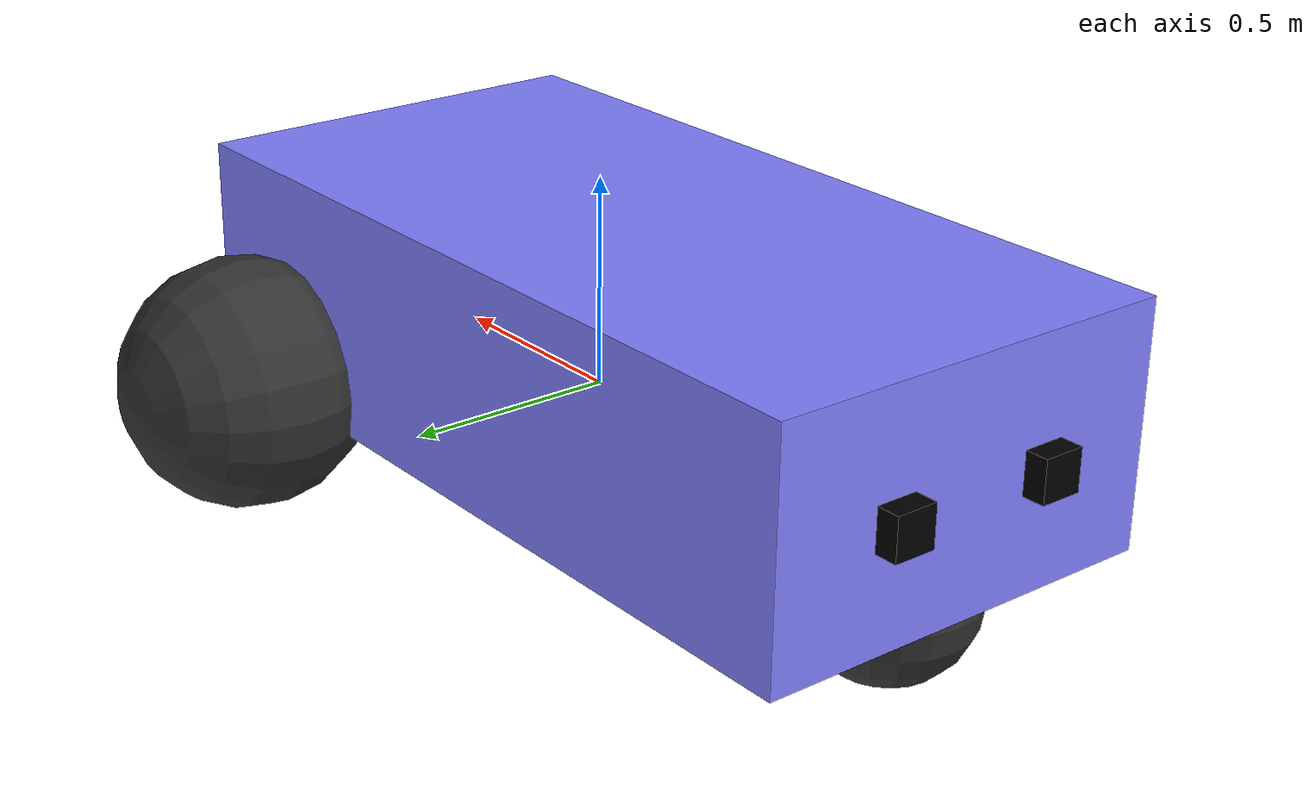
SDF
<?xml version="1.0" ?>
<sdf version="1.8">
    <model name='vehicle'>

      <link name='chassis'>
        <pose>-0.151427 -0 0.175 0 -0 0</pose>
        <inertial>
          <mass>1.14395</mass>
          <inertia>
            <ixx>0.126164</ixx>
            <ixy>0</ixy>
            <ixz>0</ixz>
            <iyy>0.416519</iyy>
            <iyz>0</iyz>
            <izz>0.481014</izz>
          </inertia>
        </inertial>
        <visual name='visual_chassis'>
          <geometry>
            <box>
              <size>2.01142 1 0.568726</size>
            </box>
          </geometry>
          <material>
            <ambient>0.5 0.5 1.0 1</ambient>
            <diffuse>0.5 0.5 1.0 1</diffuse>
            <specular>0.0 0.0 1.0 1</specular>
          </material>
        </visual>
        <collision name='collision_chassis'>
          <geometry>
            <box>
              <size>2.01142 1 0.568726</size>
            </box>
          </geometry>
        </collision>
      </link>
      <link name = 'camera_visual'>
        <pose>0.85 0 0.17 0 0 0</pose>
        <sensor type="camera" name="camera_left">
          <pose>-2.01142 0.2 0 0 0 3.14</pose>
          <camera>
            <horizontal_fov>1.047</horizontal_fov>
            <image>
              <width>320</width>
              <height>240</height>
            </image>
            <clip>
              <near>0.1</near>
              <far>100</far>
            </clip>
          </camera>
          <always_on>1</always_on>
          <update_rate>30</update_rate>
          <visualize>true</visualize>
        </sensor>
        <visual name='visual_chassis_left'>
          <pose>-2.01142 0.2 0 0 0 0</pose>
          <geometry>
            <box>
              <size>0.1 0.1 0.1</size>
            </box>
          </geometry>
          <material>
            <ambient>0 0 0 1</ambient>
            <diffuse>0 0 0 1</diffuse>
            <specular>0 0 0 1</specular>
          </material>
        </visual>
        <sensor type="camera" name="camera_right">
          <pose>-2.01142 -0.2 0 0 0 3.14</pose>
          <camera>
            <horizontal_fov>1.047</horizontal_fov>
            <image>
              <width>320</width>
              <height>240</height>
            </image>
            <clip>
              <near>0.1</near>
              <far>100</far>
            </clip>
          </camera>
          <always_on>1</always_on>
          <update_rate>30</update_rate>
          <visualize>true</visualize>
        </sensor>
        <visual name='visual_chassis_right'>
          <pose>-2.01142 -0.2 0 0 0 0</pose>
          <geometry>
            <box>
              <size>0.1 0.1 0.1</size>
            </box>
          </geometry>
          <material>
            <ambient>0 0 0 0</ambient>
            <diffuse>0 0 0 1</diffuse>
            <specular>0.0 0.0 1.0 1</specular>
          </material>
        </visual>
      </link>
      <link name='left_wheel'>
        <pose>0.554283 0.625029 -0.025 -1.5707 0 0</pose>
        <inertial>
          <mass>2</mass>
          <inertia>
            <ixx>0.145833</ixx>
            <ixy>0</ixy>
            <ixz>0</ixz>
            <iyy>0.145833</iyy>
            <iyz>0</iyz>
            <izz>0.125</izz>
          </inertia>
        </inertial>
        <visual name='visual_left_wheel'>
          <geometry>
            <sphere>
              <radius>0.3</radius>
            </sphere>
          </geometry>
          <material>
            <ambient>0.2 0.2 0.2 1</ambient>
            <diffuse>0.2 0.2 0.2 1</diffuse>
            <specular>0.2 0.2 0.2 1</specular>
          </material>
        </visual>
        <collision name='collision_left_wheel'>
          <geometry>
            <sphere>
              <radius>0.3</radius>
            </sphere>
          </geometry>
        </collision>
      </link>

      <link name='right_wheel'>
        <pose>0.554282 -0.625029 -0.025 -1.5707 0 0</pose>
        <inertial>
          <mass>2</mass>
          <inertia>
            <ixx>0.145833</ixx>
            <ixy>0</ixy>
            <ixz>0</ixz>
            <iyy>0.145833</iyy>
            <iyz>0</iyz>
            <izz>0.125</izz>
          </inertia>
        </inertial>
        <visual name='visual_right_wheel'>
          <geometry>
            <sphere>
              <radius>0.3</radius>
            </sphere>
          </geometry>
          <material>
            <ambient>0.2 0.2 0.2 1</ambient>
            <diffuse>0.2 0.2 0.2 1</diffuse>
            <specular>0.2 0.2 0.2 1</specular>
          </material>
        </visual>
        <collision name='collision_right_wheel'>
          <geometry>
            <sphere>
              <radius>0.3</radius>
            </sphere>
          </geometry>
        </collision>
      </link>

      <link name='caster'>
        <pose>-0.957138 -0 -0.125 0 -0 0</pose>
        <inertial>
          <mass>1</mass>
          <inertia>
            <ixx>0.1</ixx>
            <ixy>0</ixy>
            <ixz>0</ixz>
            <iyy>0.1</iyy>
            <iyz>0</iyz>
            <izz>0.1</izz>
          </inertia>
        </inertial>
        <visual name='visual_caster'>
          <geometry>
            <sphere>
              <radius>0.2</radius>
            </sphere>
          </geometry>
          <material>
            <ambient>0.2 0.2 0.2 1</ambient>
            <diffuse>0.2 0.2 0.2 1</diffuse>
            <specular>0.2 0.2 0.2 1</specular>
          </material>
        </visual>
        <collision name='collision_caster'>
          <geometry>
            <sphere>
              <radius>0.2</radius>
            </sphere>
          </geometry>
        </collision>
      </link>

      <joint name='left_wheel_joint' type='revolute'>
        <parent>chassis</parent>
        <child>left_wheel</child>
        <axis>
          <xyz>0 0 1</xyz>
          <limit>
            <lower>-1.79769e+308</lower>
            <upper>1.79769e+308</upper>
          </limit>
        </axis>
      </joint>

      <joint name='right_wheel_joint' type='revolute'>
        <parent>chassis</parent>
        <child>right_wheel</child>
        <axis>
          <xyz>0 0 1</xyz>
          <limit>
            <lower>-1.79769e+308</lower>
            <upper>1.79769e+308</upper>
          </limit>
        </axis>
      </joint>
      <joint name='camera_visual_joint' type='fixed'>
        <parent>chassis</parent>
        <child>camera_visual</child>
      </joint>

      <joint name='caster_wheel' type='fixed'>
        <parent>chassis</parent>
        <child>caster</child>
      </joint>

      <plugin
        filename="ignition-gazebo-diff-drive-system"
        name="ignition::gazebo::systems::DiffDrive">
        <left_joint>left_wheel_joint</left_joint>
        <right_joint>right_wheel_joint</right_joint>
        <wheel_separation>1.25</wheel_separation>
        <wheel_radius>0.3</wheel_radius>
        <odom_publish_frequency>1</odom_publish_frequency>
        <max_linear_acceleration>1</max_linear_acceleration>
        <min_linear_acceleration>-1</min_linear_acceleration>
        <max_angular_acceleration>2</max_angular_acceleration>
        <min_angular_acceleration>-2</min_angular_acceleration>
        <max_linear_velocity>0.5</max_linear_velocity>
        <min_linear_velocity>-0.5</min_linear_velocity>
        <max_angular_velocity>1</max_angular_velocity>
        <min_angular_velocity>-1</min_angular_velocity>
      </plugin>

    </model>
</sdf>
